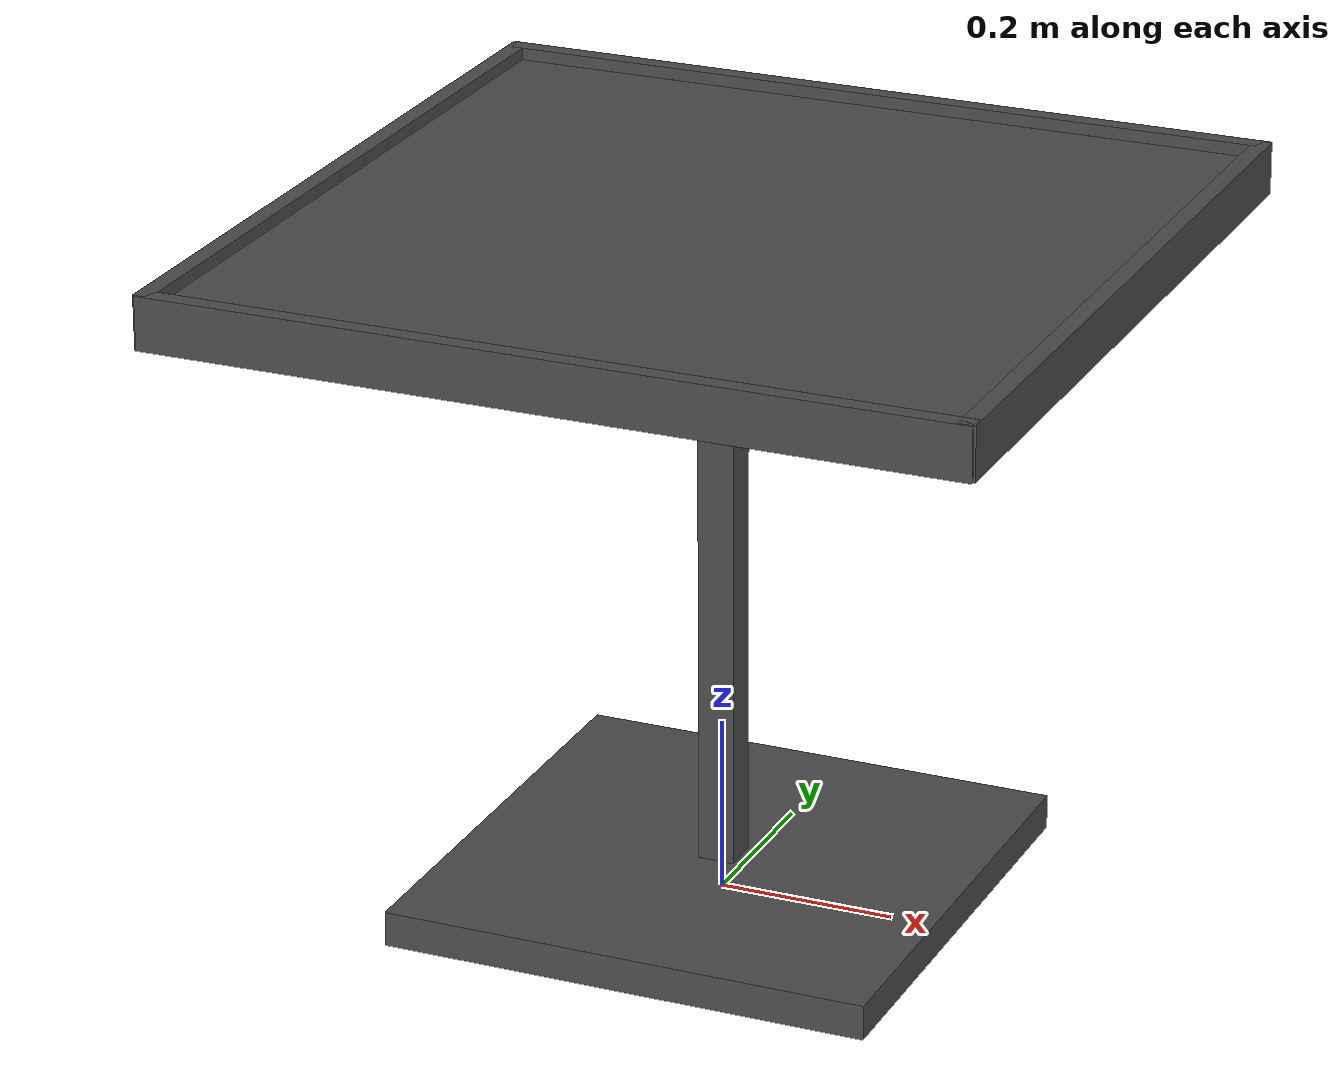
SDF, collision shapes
<?xml version="1.0" ?>
<sdf version="1.5">
  <model name="cafe_table">
    <static>true</static>
    <link name="link">
      <collision name="surface">
        <pose>0 0 0.755 0 0 0</pose>
        <geometry>
          <box>
            <size>0.913 0.913 0.04</size>
          </box>
        </geometry>
      </collision>

      <collision name="surface_side1">
        <pose>0.45 0 0.759 0 0 0</pose>
        <geometry>
          <box>
            <size>0.02 0.915 0.06</size>
          </box>
        </geometry>
      </collision>

      <collision name="surface_side2">
        <pose>0 0.45 0.759 0 0 0</pose>
        <geometry>
          <box>
            <size>0.915 0.02 0.06</size>
          </box>
        </geometry>
      </collision>

      <collision name="surface_side3">
        <pose>-0.45 0 0.759 0 0 0</pose>
        <geometry>
          <box>
            <size>0.02 0.915 0.06</size>
          </box>
        </geometry>
      </collision>

      <collision name="surface_side4">
        <pose>0 -0.45 0.759 0 0 0</pose>
        <geometry>
          <box>
            <size>0.915 0.02 0.06</size>
          </box>
        </geometry>
      </collision>

      <collision name="column">
        <pose>0 0 0.37 0 0 0</pose>
        <geometry>
          <box>
            <size>0.042 0.042 0.74</size>
          </box>
        </geometry>
      </collision>

      <collision name="base">
        <pose>0 0 0.02 0 0 0</pose>
        <geometry>
          <box>
            <size>0.56 0.56 0.04</size>
          </box>
        </geometry>
      </collision>

      <visual name="visual">
        <geometry>
          <mesh>
            <uri>model://cafe_table/meshes/cafe_table.dae</uri>
          </mesh>
        </geometry>
      </visual>

      <visual name="surface_side1_visual">
        <pose>0.45 0 0.759 0 0 0</pose>
        <geometry>
          <box>
            <size>0.02 0.913 0.06</size>
          </box>
        </geometry>
        <material><script><name>Gazebo/DarkGrey</name></script></material>
      </visual>

      <visual name="surface_side2_visual">
        <pose>0 0.45 0.759 0 0 0</pose>
        <geometry>
          <box>
            <size>0.913 0.02 0.06</size>
          </box>
        </geometry>
        <material><script><name>Gazebo/DarkGrey</name></script></material>
      </visual>

      <visual name="surface_side3_visual">
        <pose>-0.45 0 0.759 0 0 0</pose>
        <geometry>
          <box>
            <size>0.02 0.913 0.06</size>
          </box>
        </geometry>
        <material><script><name>Gazebo/DarkGrey</name></script></material>
      </visual>

      <visual name="surface_side4_visual">
        <pose>0 -0.45 0.759 0 0 0</pose>
        <geometry>
          <box>
            <size>0.913 0.02 0.06</size>
          </box>
        </geometry>
        <material><script><name>Gazebo/DarkGrey</name></script></material>
      </visual>
    </link>
    <link name="world"/>
    <joint name="fixed" type="fixed">
      <parent link="world"/>
      <child link="link"/>
    </joint>
  </model>
</sdf>
